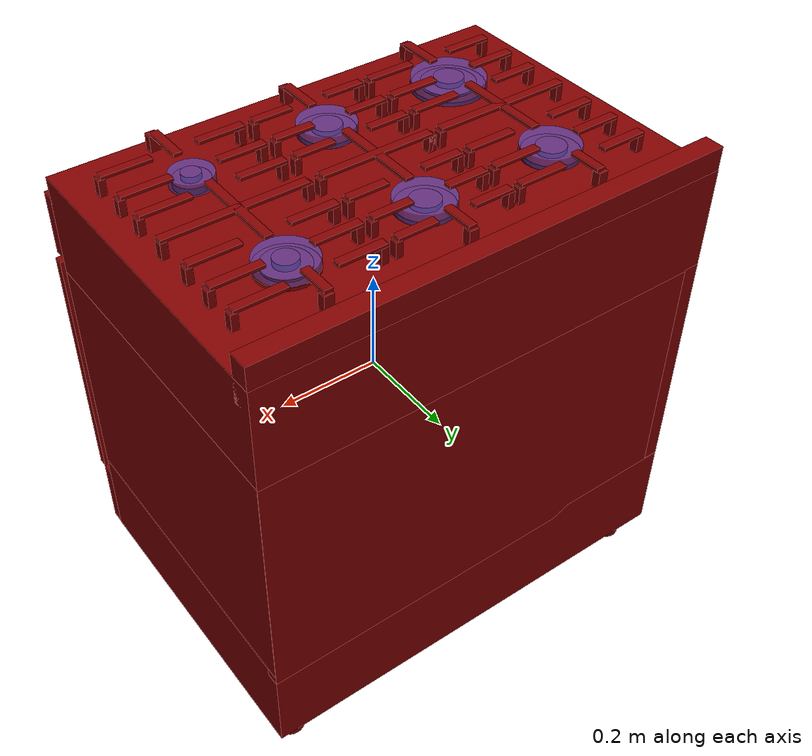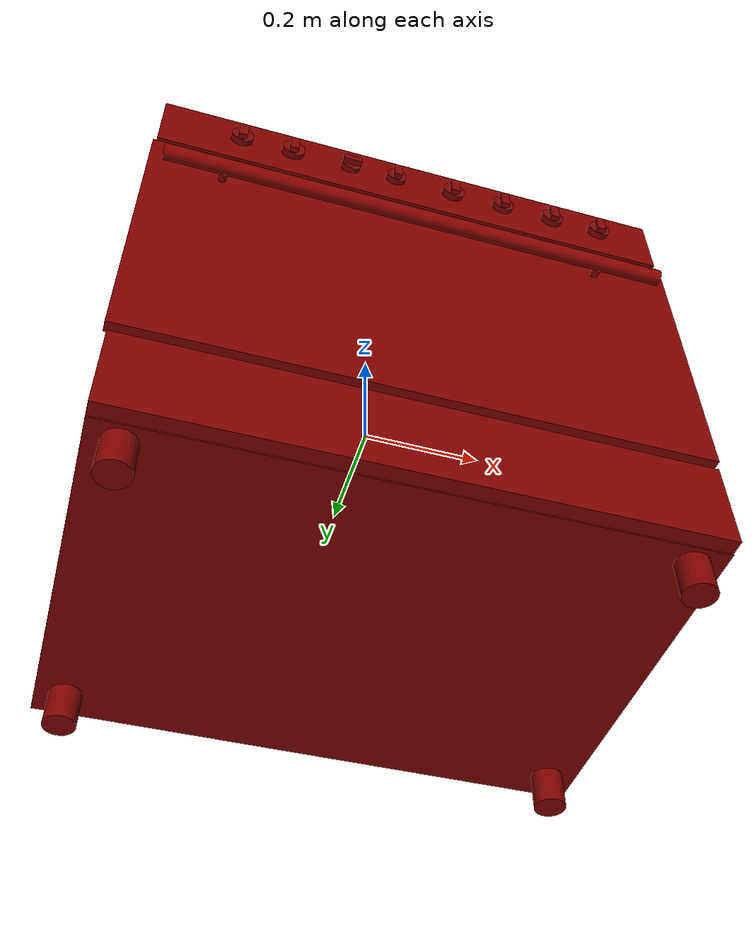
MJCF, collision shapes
<?xml version='1.0' encoding='UTF-8'?>
<mujoco model="model">
  <compiler angle="radian"/>
  <asset>
    <mesh file="visuals/knob_front_center.obj" name="knob_front_center_vis"/>
    <mesh file="visuals/knob_front_left.obj" name="knob_front_left_vis"/>
    <mesh file="visuals/knob_front_right.obj" name="knob_front_right_vis"/>
    <mesh file="visuals/knob_rear_center.obj" name="knob_rear_center_vis"/>
    <mesh file="visuals/knob_rear_left.obj" name="knob_rear_left_vis"/>
    <mesh file="visuals/knob_rear_right.obj" name="knob_rear_right_vis"/>
    <mesh file="visuals/Body001.obj" name="Body001_vis"/>
    <mesh file="visuals/Door001.obj" name="Door001_vis"/>
    <mesh file="visuals/Door001_Clear.obj" name="Door001_Clear_vis"/>
    <mesh file="visuals/Knob001.obj" name="Knob001_vis"/>
    <mesh file="visuals/Knob002.obj" name="Knob002_vis"/>
    <mesh file="visuals/Shelf001.obj" name="Shelf001_vis"/>
    <texture file="visuals/T_BC001.png" name="Body001_material" type="2d"/>
    <material name="Body001_material" rgba="1 1 1 1.0" texture="Body001_material" shininess="0.1" specular="3"/>
    <texture file="visuals/T_BC001.png" name="knob_front_center_material" type="2d"/>
    <material name="knob_front_center_material" rgba="1 1 1 1.0" texture="knob_front_center_material" shininess="0.1" specular="1"/>
    <texture file="visuals/T_BC001.png" name="knob_front_left_material" type="2d"/>
    <material name="knob_front_left_material" rgba="1 1 1 1.0" texture="knob_front_left_material" shininess="0.1" specular="1"/>
    <texture file="visuals/T_BC001.png" name="knob_front_right_material" type="2d"/>
    <material name="knob_front_right_material" rgba="1 1 1 1.0" texture="knob_front_right_material" shininess="0.1" specular="1"/>
    <texture file="visuals/T_BC001.png" name="knob_rear_center_material" type="2d"/>
    <material name="knob_rear_center_material" rgba="1 1 1 1.0" texture="knob_rear_center_material" shininess="0.1" specular="1"/>
    <texture file="visuals/T_BC001.png" name="knob_rear_left_material" type="2d"/>
    <material name="knob_rear_left_material" rgba="1 1 1 1.0" texture="knob_rear_left_material" shininess="0.1" specular="1"/>
    <texture file="visuals/T_BC001.png" name="knob_rear_right_material" type="2d"/>
    <material name="knob_rear_right_material" rgba="1 1 1 1.0" texture="knob_rear_right_material" shininess="0.1" specular="1"/>
    <texture file="visuals/T_BC001.png" name="Door001_material" type="2d"/>
    <material name="Door001_material" rgba="1 1 1 1.0" texture="Door001_material" shininess="0.1" specular="1"/>
    <texture file="visuals/T_BC001.png" name="Door001_Clear_material" type="2d"/>
    <material name="Door001_Clear_material" rgba="1 1 1 0.5" texture="Door001_Clear_material" shininess="0.1" specular="1"/>
    <texture file="visuals/T_BC001.png" name="Knob001_material" type="2d"/>
    <material name="Knob001_material" rgba="1 1 1 1.0" texture="Knob001_material" shininess="0.1" specular="1"/>
    <texture file="visuals/T_BC001.png" name="Knob002_material" type="2d"/>
    <material name="Knob002_material" rgba="1 1 1 1.0" texture="Knob002_material" shininess="0.1" specular="1"/>
    <texture file="visuals/T_BC001.png" name="Shelf001_material" type="2d"/>
    <material name="Shelf001_material" rgba="1 1 1 1.0" texture="Shelf001_material" shininess="0.1" specular="1"/>
  </asset>
  <default>
    <default class="visual">
      <geom conaffinity="0" contype="0" group="1" type="mesh"/>
    </default>
    <default class="collision">
      <geom group="0" rgba="0.5 0 0 0.5"/>
    </default>
    <default class="spawn">
      <geom group="0" rgba="1 1 1 0.5" contype="0" conaffinity="0"/>
      <site group="0" rgba="1 1 1 0.5"/>
    </default>
    <default class="region">
      <geom group="1" conaffinity="0" contype="0" rgba="0 1 0 0"/>
    </default>
  </default>
  <worldbody>
    <body>
      <body name="object">
        <site type="cylinder" rgba="0.3 0.4 1 0.5" size="0.052774783223867416 0.010760868899524212" pos="0.26255980134010315 0.1489594280719757 0.44456061720848083" name="burner_on_rear_right"/>
        <site type="cylinder" rgba="0.3 0.4 1 0.5" size="0.05270331725478172 0.010760868899524212" pos="-0.2542854845523834 0.14379093050956726 0.4441044330596924" name="burner_on_rear_left"/>
        <site type="cylinder" rgba="0.3 0.4 1 0.5" size="0.03870527446269989 0.010760869830846786" pos="0.26398470997810364 -0.12507441639900208 0.44441649317741394" name="burner_on_front_right"/>
        <site type="cylinder" rgba="0.3 0.4 1 0.5" size="0.06828669458627701 0.010760868899524212" pos="-0.2542854845523834 -0.1250743865966797 0.4442591667175293" name="burner_on_front_left"/>
        <site type="cylinder" rgba="0.3 0.4 1 0.5" size="0.052774783223867416 0.010760868899524212" pos="0.004878326319158077 0.14379093050956726 0.44426441192626953" name="burner_on_rear_center"/>
        <site type="cylinder" rgba="0.3 0.4 1 0.5" size="0.052774783223867416 0.010760868899524212" pos="0.004878326319158077 -0.12565484642982483 0.4446250796318054" name="burner_on_front_center"/>
        <geom mesh="Body001_vis" type="mesh" solimp="0.998 0.998 0.001" solref="0.001 1" density="100" friction="0.95 0.3 0.1" class="visual" material="Body001_material"/>
        <geom class="collision" type="box" pos="0.00020488735754042864 0.028140442445874214 -0.32311633229255676" size="0.4453953504562378 0.31004318594932556 0.09313406050205231" quat="1.0 0.0 0.0 0.0"/>
        <geom class="collision" type="box" pos="0.00020488735754042864 0.028639696538448334 0.33483633399009705" size="0.4453953504562378 0.3095439076423645 0.09698358178138733" quat="1.0 0.0 0.0 0.0"/>
        <geom class="collision" type="box" pos="-0.4304044544696808 0.029137693345546722 0.006240129470825195" size="0.014781756326556206 0.30916985869407654 0.23470935225486755" quat="1.0 0.0 0.0 0.0"/>
        <geom class="collision" type="box" pos="0.4310310482978821 0.028086692094802856 0.006240129470825195" size="0.014569397084414959 0.30916979908943176 0.23470935225486755" quat="1.0 0.0 0.0 0.0"/>
        <geom class="collision" type="box" pos="0.00020488735754042864 0.32567211985588074 -0.0013430044054985046" size="0.4453953504562378 0.01251149270683527 0.2447463721036911" quat="1.0 0.0 0.0 0.0"/>
        <geom class="collision" type="box" pos="0.00020488735754042864 0.31876981258392334 0.4303571879863739" size="0.4453953504562378 0.018547752872109413 0.04469680413603783" quat="1.0 0.0 0.0 0.0"/>
        <geom class="collision" type="box" pos="-0.40324121713638306 -0.014663396403193474 0.015698377043008804" size="0.014781756326556206 0.23607884347438812 0.013486760668456554" quat="1.0 0.0 0.0 0.0"/>
        <geom class="collision" type="box" pos="0.40592658519744873 -0.014663396403193474 0.015698377043008804" size="0.014781756326556206 0.23607884347438812 0.013486760668456554" quat="1.0 0.0 0.0 0.0"/>
        <geom class="collision" type="box" pos="-0.2540077865123749 0.016108114272356033 0.46447232365608215" size="0.008020833134651184 0.08827412873506546 0.003019273281097412" quat="1.0 0.0 0.0 0.0"/>
        <geom class="collision" type="box" pos="0.0048889219760894775 0.016108114272356033 0.46447232365608215" size="0.008020833134651184 0.08827412873506546 0.003019273281097412" quat="1.0 0.0 0.0 0.0"/>
        <geom class="collision" type="box" pos="0.26290202140808105 0.016108114272356033 0.46447232365608215" size="0.008020833134651184 0.08827412873506546 0.003019273281097412" quat="1.0 0.0 0.0 0.0"/>
        <geom class="collision" type="box" pos="-0.25400781631469727 0.22924154996871948 0.46447232365608215" size="0.008020833134651184 0.03060511127114296 0.003019273281097412" quat="1.0 0.0 0.0 0.0"/>
        <geom class="collision" type="box" pos="0.0048889219760894775 0.22924154996871948 0.46447232365608215" size="0.008020833134651184 0.03060511127114296 0.003019273281097412" quat="1.0 0.0 0.0 0.0"/>
        <geom class="collision" type="box" pos="0.26290202140808105 0.22924154996871948 0.46447232365608215" size="0.008020833134651184 0.03060511127114296 0.003019273281097412" quat="1.0 0.0 0.0 0.0"/>
        <geom class="collision" type="box" pos="-0.25400781631469727 -0.2080954611301422 0.46447232365608215" size="0.008020833134651184 0.04030852019786835 0.003019273281097412" quat="1.0 0.0 0.0 0.0"/>
        <geom class="collision" type="box" pos="0.0048889219760894775 -0.2080954611301422 0.46447232365608215" size="0.008020833134651184 0.04030852019786835 0.003019273281097412" quat="1.0 0.0 0.0 0.0"/>
        <geom class="collision" type="box" pos="0.26290202140808105 -0.2080954611301422 0.46447232365608215" size="0.008020833134651184 0.04030852019786835 0.003019273281097412" quat="1.0 0.0 0.0 0.0"/>
        <geom class="collision" type="box" pos="0.0048889219760894775 0.016108114272356033 0.46447232365608215" size="0.008020833134651184 0.10770655423402786 0.003019273281097412" quat="0.7071068286895752 0.0 -0.0 -0.7071067690849304"/>
        <geom class="collision" type="box" pos="-0.25487247109413147 0.016108114272356033 0.46447232365608215" size="0.008020833134651184 0.13165384531021118 0.003019273281097412" quat="0.7071068286895752 0.0 -0.0 -0.7071067690849304"/>
        <geom class="collision" type="box" pos="0.26784148812294006 0.016108114272356033 0.46447232365608215" size="0.008020833134651184 0.13165384531021118 0.003019273281097412" quat="0.7071068286895752 0.0 -0.0 -0.7071067690849304"/>
        <geom class="collision" type="box" pos="-0.3809586465358734 0.016108116135001183 0.4467836916446686" size="0.008020833134651184 0.006342153996229172 0.0148042943328619" quat="0.7071068286895752 0.0 -0.0 -0.7071067690849304"/>
        <geom class="collision" type="box" pos="-0.12493142485618591 0.016108116135001183 0.4467836916446686" size="0.008020833134651184 0.006342153996229172 0.0148042943328619" quat="0.7071068286895752 0.0 -0.0 -0.7071067690849304"/>
        <geom class="collision" type="box" pos="-0.10400436073541641 0.016108116135001183 0.4467836916446686" size="0.008020833134651184 0.006342153996229172 0.0148042943328619" quat="0.7071068286895752 0.0 -0.0 -0.7071067690849304"/>
        <geom class="collision" type="box" pos="0.11311667412519455 0.016108116135001183 0.4467836916446686" size="0.008020833134651184 0.006342153996229172 0.0148042943328619" quat="0.7071068286895752 0.0 -0.0 -0.7071067690849304"/>
        <geom class="collision" type="box" pos="0.13638877868652344 0.016108116135001183 0.4467836916446686" size="0.008020833134651184 0.006342153996229172 0.0148042943328619" quat="0.7071068286895752 0.0 -0.0 -0.7071067690849304"/>
        <geom class="collision" type="box" pos="0.3935852646827698 0.016108116135001183 0.4467836916446686" size="0.008020833134651184 0.006342153996229172 0.0148042943328619" quat="0.7071068286895752 0.0 -0.0 -0.7071067690849304"/>
        <geom class="collision" type="box" pos="0.34893062710762024 -0.18455511331558228 0.46447232365608215" size="0.008020833134651184 0.045956991612911224 0.003019273281097412" quat="0.7071068286895752 0.0 -0.0 -0.7071067690849304"/>
        <geom class="collision" type="box" pos="0.3935852646827698 -0.18455511331558228 0.4467836916446686" size="0.008020833134651184 0.006342153996229172 0.0148042943328619" quat="0.7071068286895752 0.0 -0.0 -0.7071067690849304"/>
        <geom class="collision" type="box" pos="0.1388109177350998 -0.18455511331558228 0.4467836916446686" size="0.008020833134651184 0.006342153996229172 0.0148042943328619" quat="0.7071068286895752 0.0 -0.0 -0.7071067690849304"/>
        <geom class="collision" type="box" pos="0.17639386653900146 -0.18455511331558228 0.46447232365608215" size="0.008020833134651184 0.0436764694750309 0.003019273281097412" quat="0.7071068286895752 0.0 -0.0 -0.7071067690849304"/>
        <geom class="collision" type="box" pos="0.34893062710762024 -0.11675010621547699 0.46447232365608215" size="0.008020833134651184 0.045956991612911224 0.003019273281097412" quat="0.7071068286895752 0.0 -0.0 -0.7071067690849304"/>
        <geom class="collision" type="box" pos="0.3935852646827698 -0.11675010621547699 0.4467836916446686" size="0.008020833134651184 0.006342153996229172 0.0148042943328619" quat="0.7071068286895752 0.0 -0.0 -0.7071067690849304"/>
        <geom class="collision" type="box" pos="0.1388109177350998 -0.11675010621547699 0.4467836916446686" size="0.008020833134651184 0.006342153996229172 0.0148042943328619" quat="0.7071068286895752 0.0 -0.0 -0.7071067690849304"/>
        <geom class="collision" type="box" pos="0.17639386653900146 -0.11675010621547699 0.46447232365608215" size="0.008020833134651184 0.0436764694750309 0.003019273281097412" quat="0.7071068286895752 0.0 -0.0 -0.7071067690849304"/>
        <geom class="collision" type="box" pos="0.34893062710762024 -0.055301059037446976 0.46447232365608215" size="0.008020833134651184 0.045956991612911224 0.003019273281097412" quat="0.7071068286895752 0.0 -0.0 -0.7071067690849304"/>
        <geom class="collision" type="box" pos="0.3935852646827698 -0.055301059037446976 0.4467836916446686" size="0.008020833134651184 0.006342153996229172 0.0148042943328619" quat="0.7071068286895752 0.0 -0.0 -0.7071067690849304"/>
        <geom class="collision" type="box" pos="0.1388109177350998 -0.055301059037446976 0.4467836916446686" size="0.008020833134651184 0.006342153996229172 0.0148042943328619" quat="0.7071068286895752 0.0 -0.0 -0.7071067690849304"/>
        <geom class="collision" type="box" pos="0.17639386653900146 -0.055301059037446976 0.46447232365608215" size="0.008020833134651184 0.0436764694750309 0.003019273281097412" quat="0.7071068286895752 0.0 -0.0 -0.7071067690849304"/>
        <geom class="collision" type="box" pos="0.34893062710762024 0.09073549509048462 0.46447232365608215" size="0.008020833134651184 0.045956991612911224 0.003019273281097412" quat="0.7071068286895752 0.0 -0.0 -0.7071067690849304"/>
        <geom class="collision" type="box" pos="0.3935852646827698 0.09073549509048462 0.4467836916446686" size="0.008020833134651184 0.006342153996229172 0.0148042943328619" quat="0.7071068286895752 0.0 -0.0 -0.7071067690849304"/>
        <geom class="collision" type="box" pos="0.1388109177350998 0.09073549509048462 0.4467836916446686" size="0.008020833134651184 0.006342153996229172 0.0148042943328619" quat="0.7071068286895752 0.0 -0.0 -0.7071067690849304"/>
        <geom class="collision" type="box" pos="0.17639386653900146 0.09073549509048462 0.46447232365608215" size="0.008020833134651184 0.0436764694750309 0.003019273281097412" quat="0.7071068286895752 0.0 -0.0 -0.7071067690849304"/>
        <geom class="collision" type="box" pos="0.34893062710762024 0.15319275856018066 0.46447232365608215" size="0.008020833134651184 0.045956991612911224 0.003019273281097412" quat="0.7071068286895752 0.0 -0.0 -0.7071067690849304"/>
        <geom class="collision" type="box" pos="0.3935852646827698 0.15319275856018066 0.4467836916446686" size="0.008020833134651184 0.006342153996229172 0.0148042943328619" quat="0.7071068286895752 0.0 -0.0 -0.7071067690849304"/>
        <geom class="collision" type="box" pos="0.1388109177350998 0.15319275856018066 0.4467836916446686" size="0.008020833134651184 0.006342153996229172 0.0148042943328619" quat="0.7071068286895752 0.0 -0.0 -0.7071067690849304"/>
        <geom class="collision" type="box" pos="0.17639386653900146 0.15319275856018066 0.46447232365608215" size="0.008020833134651184 0.0436764694750309 0.003019273281097412" quat="0.7071068286895752 0.0 -0.0 -0.7071067690849304"/>
        <geom class="collision" type="box" pos="0.34893062710762024 0.21533507108688354 0.46447232365608215" size="0.008020833134651184 0.045956991612911224 0.003019273281097412" quat="0.7071068286895752 0.0 -0.0 -0.7071067690849304"/>
        <geom class="collision" type="box" pos="0.3935852646827698 0.21533507108688354 0.4467836916446686" size="0.008020833134651184 0.006342153996229172 0.0148042943328619" quat="0.7071068286895752 0.0 -0.0 -0.7071067690849304"/>
        <geom class="collision" type="box" pos="0.1388109177350998 0.21533507108688354 0.4467836916446686" size="0.008020833134651184 0.006342153996229172 0.0148042943328619" quat="0.7071068286895752 0.0 -0.0 -0.7071067690849304"/>
        <geom class="collision" type="box" pos="0.17639386653900146 0.21533507108688354 0.46447232365608215" size="0.008020833134651184 0.0436764694750309 0.003019273281097412" quat="0.7071068286895752 0.0 -0.0 -0.7071067690849304"/>
        <geom class="collision" type="box" pos="-0.1687750518321991 -0.18455511331558228 0.46447232365608215" size="0.008020833134651184 0.045956991612911224 0.003019273281097412" quat="0.7071068286895752 0.0 -0.0 -0.7071067690849304"/>
        <geom class="collision" type="box" pos="-0.12412041425704956 -0.18455511331558228 0.4467836916446686" size="0.008020833134651184 0.006342153996229172 0.0148042943328619" quat="0.7071068286895752 0.0 -0.0 -0.7071067690849304"/>
        <geom class="collision" type="box" pos="-0.37889474630355835 -0.18455511331558228 0.4467836916446686" size="0.008020833134651184 0.006342153996229172 0.0148042943328619" quat="0.7071068286895752 0.0 -0.0 -0.7071067690849304"/>
        <geom class="collision" type="box" pos="-0.34131181240081787 -0.18455511331558228 0.46447232365608215" size="0.008020833134651184 0.0436764694750309 0.003019273281097412" quat="0.7071068286895752 0.0 -0.0 -0.7071067690849304"/>
        <geom class="collision" type="box" pos="-0.1687750518321991 -0.11675010621547699 0.46447232365608215" size="0.008020833134651184 0.045956991612911224 0.003019273281097412" quat="0.7071068286895752 0.0 -0.0 -0.7071067690849304"/>
        <geom class="collision" type="box" pos="-0.12412041425704956 -0.11675010621547699 0.4467836916446686" size="0.008020833134651184 0.006342153996229172 0.0148042943328619" quat="0.7071068286895752 0.0 -0.0 -0.7071067690849304"/>
        <geom class="collision" type="box" pos="-0.37889474630355835 -0.11675010621547699 0.4467836916446686" size="0.008020833134651184 0.006342153996229172 0.0148042943328619" quat="0.7071068286895752 0.0 -0.0 -0.7071067690849304"/>
        <geom class="collision" type="box" pos="-0.34131181240081787 -0.11675010621547699 0.46447232365608215" size="0.008020833134651184 0.0436764694750309 0.003019273281097412" quat="0.7071068286895752 0.0 -0.0 -0.7071067690849304"/>
        <geom class="collision" type="box" pos="-0.1687750518321991 -0.055301059037446976 0.46447232365608215" size="0.008020833134651184 0.045956991612911224 0.003019273281097412" quat="0.7071068286895752 0.0 -0.0 -0.7071067690849304"/>
        <geom class="collision" type="box" pos="-0.12412041425704956 -0.055301059037446976 0.4467836916446686" size="0.008020833134651184 0.006342153996229172 0.0148042943328619" quat="0.7071068286895752 0.0 -0.0 -0.7071067690849304"/>
        <geom class="collision" type="box" pos="-0.37889474630355835 -0.055301059037446976 0.4467836916446686" size="0.008020833134651184 0.006342153996229172 0.0148042943328619" quat="0.7071068286895752 0.0 -0.0 -0.7071067690849304"/>
        <geom class="collision" type="box" pos="-0.34131181240081787 -0.055301059037446976 0.46447232365608215" size="0.008020833134651184 0.0436764694750309 0.003019273281097412" quat="0.7071068286895752 0.0 -0.0 -0.7071067690849304"/>
        <geom class="collision" type="box" pos="-0.1687750518321991 0.09073549509048462 0.46447232365608215" size="0.008020833134651184 0.045956991612911224 0.003019273281097412" quat="0.7071068286895752 0.0 -0.0 -0.7071067690849304"/>
        <geom class="collision" type="box" pos="-0.12412041425704956 0.09073549509048462 0.4467836916446686" size="0.008020833134651184 0.006342153996229172 0.0148042943328619" quat="0.7071068286895752 0.0 -0.0 -0.7071067690849304"/>
        <geom class="collision" type="box" pos="-0.37889474630355835 0.09073549509048462 0.4467836916446686" size="0.008020833134651184 0.006342153996229172 0.0148042943328619" quat="0.7071068286895752 0.0 -0.0 -0.7071067690849304"/>
        <geom class="collision" type="box" pos="-0.34131181240081787 0.09073549509048462 0.46447232365608215" size="0.008020833134651184 0.0436764694750309 0.003019273281097412" quat="0.7071068286895752 0.0 -0.0 -0.7071067690849304"/>
        <geom class="collision" type="box" pos="-0.1687750518321991 0.15319275856018066 0.46447232365608215" size="0.008020833134651184 0.045956991612911224 0.003019273281097412" quat="0.7071068286895752 0.0 -0.0 -0.7071067690849304"/>
        <geom class="collision" type="box" pos="-0.12412041425704956 0.15319275856018066 0.4467836916446686" size="0.008020833134651184 0.006342153996229172 0.0148042943328619" quat="0.7071068286895752 0.0 -0.0 -0.7071067690849304"/>
        <geom class="collision" type="box" pos="-0.37889474630355835 0.15319275856018066 0.4467836916446686" size="0.008020833134651184 0.006342153996229172 0.0148042943328619" quat="0.7071068286895752 0.0 -0.0 -0.7071067690849304"/>
        <geom class="collision" type="box" pos="-0.34131181240081787 0.15319275856018066 0.46447232365608215" size="0.008020833134651184 0.0436764694750309 0.003019273281097412" quat="0.7071068286895752 0.0 -0.0 -0.7071067690849304"/>
        <geom class="collision" type="box" pos="-0.1687750518321991 0.21533507108688354 0.46447232365608215" size="0.008020833134651184 0.045956991612911224 0.003019273281097412" quat="0.7071068286895752 0.0 -0.0 -0.7071067690849304"/>
        <geom class="collision" type="box" pos="-0.12412041425704956 0.21533507108688354 0.4467836916446686" size="0.008020833134651184 0.006342153996229172 0.0148042943328619" quat="0.7071068286895752 0.0 -0.0 -0.7071067690849304"/>
        <geom class="collision" type="box" pos="-0.37889474630355835 0.21533507108688354 0.4467836916446686" size="0.008020833134651184 0.006342153996229172 0.0148042943328619" quat="0.7071068286895752 0.0 -0.0 -0.7071067690849304"/>
        <geom class="collision" type="box" pos="-0.34131181240081787 0.21533507108688354 0.46447232365608215" size="0.008020833134651184 0.0436764694750309 0.003019273281097412" quat="0.7071068286895752 0.0 -0.0 -0.7071067690849304"/>
        <geom class="collision" type="box" pos="0.0768672376871109 -0.18455511331558228 0.46447232365608215" size="0.008020833134651184 0.03735075145959854 0.003019273281097412" quat="0.7071068286895752 0.0 -0.0 -0.7071067690849304"/>
        <geom class="collision" type="box" pos="0.1127413958311081 -0.18455511331558228 0.4467836916446686" size="0.008020833134651184 0.006342153996229172 0.0148042943328619" quat="0.7071068286895752 0.0 -0.0 -0.7071067690849304"/>
        <geom class="collision" type="box" pos="0.0768672376871109 -0.11675010621547699 0.46447232365608215" size="0.008020833134651184 0.03735075145959854 0.003019273281097412" quat="0.7071068286895752 0.0 -0.0 -0.7071067690849304"/>
        <geom class="collision" type="box" pos="0.1127413958311081 -0.11675010621547699 0.4467836916446686" size="0.008020833134651184 0.006342153996229172 0.0148042943328619" quat="0.7071068286895752 0.0 -0.0 -0.7071067690849304"/>
        <geom class="collision" type="box" pos="0.0768672376871109 -0.05530105531215668 0.46447232365608215" size="0.008020833134651184 0.03735075145959854 0.003019273281097412" quat="0.7071068286895752 0.0 -0.0 -0.7071067690849304"/>
        <geom class="collision" type="box" pos="0.1127413958311081 -0.055301059037446976 0.4467836916446686" size="0.008020833134651184 0.006342153996229172 0.0148042943328619" quat="0.7071068286895752 0.0 -0.0 -0.7071067690849304"/>
        <geom class="collision" type="box" pos="0.0768672376871109 0.09073549509048462 0.46447232365608215" size="0.008020833134651184 0.03735075145959854 0.003019273281097412" quat="0.7071068286895752 0.0 -0.0 -0.7071067690849304"/>
        <geom class="collision" type="box" pos="0.1127413958311081 0.09073549509048462 0.4467836916446686" size="0.008020833134651184 0.006342153996229172 0.0148042943328619" quat="0.7071068286895752 0.0 -0.0 -0.7071067690849304"/>
        <geom class="collision" type="box" pos="0.0768672376871109 0.15319275856018066 0.46447232365608215" size="0.008020833134651184 0.03735075145959854 0.003019273281097412" quat="0.7071068286895752 0.0 -0.0 -0.7071067690849304"/>
        <geom class="collision" type="box" pos="0.1127413958311081 0.15319275856018066 0.4467836916446686" size="0.008020833134651184 0.006342153996229172 0.0148042943328619" quat="0.7071068286895752 0.0 -0.0 -0.7071067690849304"/>
        <geom class="collision" type="box" pos="0.0768672376871109 0.21533507108688354 0.46447232365608215" size="0.008020833134651184 0.03735075145959854 0.003019273281097412" quat="0.7071068286895752 0.0 -0.0 -0.7071067690849304"/>
        <geom class="collision" type="box" pos="0.1127413958311081 0.21533507108688354 0.4467836916446686" size="0.008020833134651184 0.006342153996229172 0.0148042943328619" quat="0.7071068286895752 0.0 -0.0 -0.7071067690849304"/>
        <geom class="collision" type="box" pos="-0.06773796677589417 -0.18455511331558228 0.46447232365608215" size="0.008020833134651184 0.03735075145959854 0.003019273281097412" quat="0.7071068286895752 0.0 -0.0 -0.7071067690849304"/>
        <geom class="collision" type="box" pos="-0.06773796677589417 -0.11675010621547699 0.46447232365608215" size="0.008020833134651184 0.03735075145959854 0.003019273281097412" quat="0.7071068286895752 0.0 -0.0 -0.7071067690849304"/>
        <geom class="collision" type="box" pos="-0.06773796677589417 -0.05530105531215668 0.46447232365608215" size="0.008020833134651184 0.03735075145959854 0.003019273281097412" quat="0.7071068286895752 0.0 -0.0 -0.7071067690849304"/>
        <geom class="collision" type="box" pos="-0.06773796677589417 0.09073549509048462 0.46447232365608215" size="0.008020833134651184 0.03735075145959854 0.003019273281097412" quat="0.7071068286895752 0.0 -0.0 -0.7071067690849304"/>
        <geom class="collision" type="box" pos="-0.06773796677589417 0.15319275856018066 0.46447232365608215" size="0.008020833134651184 0.03735075145959854 0.003019273281097412" quat="0.7071068286895752 0.0 -0.0 -0.7071067690849304"/>
        <geom class="collision" type="box" pos="-0.06773796677589417 0.21533507108688354 0.46447232365608215" size="0.008020833134651184 0.03735075145959854 0.003019273281097412" quat="0.7071068286895752 0.0 -0.0 -0.7071067690849304"/>
        <geom class="collision" type="box" pos="-0.10229562968015671 0.016108116135001183 0.4467836916446686" size="0.008020833134651184 0.006342153996229172 0.0148042943328619" quat="0.7071068286895752 0.0 -0.0 -0.7071067690849304"/>
        <geom class="collision" type="box" pos="-0.10267090797424316 -0.18455511331558228 0.4467836916446686" size="0.008020833134651184 0.006342153996229172 0.0148042943328619" quat="0.7071068286895752 0.0 -0.0 -0.7071067690849304"/>
        <geom class="collision" type="box" pos="-0.10267090797424316 -0.11675010621547699 0.4467836916446686" size="0.008020833134651184 0.006342153996229172 0.0148042943328619" quat="0.7071068286895752 0.0 -0.0 -0.7071067690849304"/>
        <geom class="collision" type="box" pos="-0.10267090797424316 -0.055301059037446976 0.4467836916446686" size="0.008020833134651184 0.006342153996229172 0.0148042943328619" quat="0.7071068286895752 0.0 -0.0 -0.7071067690849304"/>
        <geom class="collision" type="box" pos="-0.10267090797424316 0.09073549509048462 0.4467836916446686" size="0.008020833134651184 0.006342153996229172 0.0148042943328619" quat="0.7071068286895752 0.0 -0.0 -0.7071067690849304"/>
        <geom class="collision" type="box" pos="-0.10267090797424316 0.15319275856018066 0.4467836916446686" size="0.008020833134651184 0.006342153996229172 0.0148042943328619" quat="0.7071068286895752 0.0 -0.0 -0.7071067690849304"/>
        <geom class="collision" type="box" pos="-0.10267090797424316 0.21533507108688354 0.4467836916446686" size="0.008020833134651184 0.006342153996229172 0.0148042943328619" quat="0.7071068286895752 0.0 -0.0 -0.7071067690849304"/>
        <geom class="collision" type="box" pos="-0.2565237283706665 0.25669053196907043 0.4467836916446686" size="0.008020833134651184 0.0088351396843791 0.0148042943328619" quat="0.7071068286895752 0.0 -0.0 -0.7071067690849304"/>
        <geom class="collision" type="box" pos="-0.2565237283706665 -0.25266823172569275 0.4467836916446686" size="0.008020833134651184 0.0088351396843791 0.0148042943328619" quat="0.7071068286895752 0.0 -0.0 -0.7071067690849304"/>
        <geom class="collision" type="box" pos="0.005409449338912964 0.25669053196907043 0.4467836916446686" size="0.008020833134651184 0.0088351396843791 0.0148042943328619" quat="0.7071068286895752 0.0 -0.0 -0.7071067690849304"/>
        <geom class="collision" type="box" pos="0.005409449338912964 -0.25266823172569275 0.4467836916446686" size="0.008020833134651184 0.0088351396843791 0.0148042943328619" quat="0.7071068286895752 0.0 -0.0 -0.7071067690849304"/>
        <geom class="collision" type="box" pos="0.26543349027633667 0.25669053196907043 0.4467836916446686" size="0.008020833134651184 0.0088351396843791 0.0148042943328619" quat="0.7071068286895752 0.0 -0.0 -0.7071067690849304"/>
        <geom class="collision" type="box" pos="0.26543349027633667 -0.25266823172569275 0.4467836916446686" size="0.008020833134651184 0.0088351396843791 0.0148042943328619" quat="0.7071068286895752 0.0 -0.0 -0.7071067690849304"/>
        <geom class="collision" type="cylinder" pos="0.004475499968975782 -0.12605993449687958 0.43533602356910706" size="0.050690971314907074 0.0046903761103749275" quat="1.0 0.0 0.0 0.0"/>
        <geom class="collision" type="cylinder" pos="0.004475499968975782 -0.12605993449687958 0.44558706879615784" size="0.026749199256300926 0.004697184544056654" quat="1.0 0.0 0.0 0.0"/>
        <geom class="collision" type="cylinder" pos="0.2644246220588684 -0.12605993449687958 0.4373880624771118" size="0.03253355994820595 0.006698829587548971" quat="1.0 0.0 0.0 0.0"/>
        <geom class="collision" type="cylinder" pos="0.2644246220588684 -0.12605993449687958 0.4492843449115753" size="0.017111772671341896 0.005864665377885103" quat="1.0 0.0 0.0 0.0"/>
        <geom class="collision" type="cylinder" pos="-0.25497615337371826 -0.12605993449687958 0.4331173896789551" size="0.06697637587785721 0.006197245325893164" quat="1.0 0.0 0.0 0.0"/>
        <geom class="collision" type="cylinder" pos="-0.25497615337371826 -0.12605993449687958 0.4399527907371521" size="0.05044073984026909 0.004110780078917742" quat="1.0 0.0 0.0 0.0"/>
        <geom class="collision" type="cylinder" pos="-0.25497615337371826 -0.12605993449687958 0.4490155279636383" size="0.02739134430885315 0.005384530406445265" quat="1.0 0.0 0.0 0.0"/>
        <geom class="collision" type="cylinder" pos="0.26277685165405273 0.1482143998146057 0.436343789100647" size="0.053550779819488525 0.003170776180922985" quat="1.0 0.0 0.0 0.0"/>
        <geom class="collision" type="cylinder" pos="0.26277685165405273 0.1482143998146057 0.44075971841812134" size="0.04089323431253433 0.0029994207434356213" quat="1.0 0.0 0.0 0.0"/>
        <geom class="collision" type="cylinder" pos="0.26277685165405273 0.1482143998146057 0.44931647181510925" size="0.02119172364473343 0.005735463462769985" quat="1.0 0.0 0.0 0.0"/>
        <geom class="collision" type="cylinder" pos="0.004475499968975782 0.1440144032239914 0.43533602356910706" size="0.050690971314907074 0.0046903761103749275" quat="1.0 0.0 0.0 0.0"/>
        <geom class="collision" type="cylinder" pos="0.004475499968975782 0.1440144032239914 0.44558706879615784" size="0.026749199256300926 0.004697184544056654" quat="1.0 0.0 0.0 0.0"/>
        <geom class="collision" type="cylinder" pos="-0.2555323839187622 0.1440144032239914 0.43533602356910706" size="0.050690971314907074 0.0046903761103749275" quat="1.0 0.0 0.0 0.0"/>
        <geom class="collision" type="cylinder" pos="-0.2555323839187622 0.1440144032239914 0.44558706879615784" size="0.026749199256300926 0.004697184544056654" quat="1.0 0.0 0.0 0.0"/>
        <geom class="collision" type="cylinder" pos="-0.3973701298236847 -0.24933138489723206 -0.44423994421958923" size="0.025929519906640053 0.030012857168912888" quat="1.0 0.0 0.0 0.0"/>
        <geom class="collision" type="cylinder" pos="-0.3973701298236847 0.2881637513637543 -0.44423994421958923" size="0.025929519906640053 0.030012857168912888" quat="1.0 0.0 0.0 0.0"/>
        <geom class="collision" type="cylinder" pos="0.3978939652442932 -0.24933138489723206 -0.44423994421958923" size="0.025929519906640053 0.030012857168912888" quat="1.0 0.0 0.0 0.0"/>
        <geom class="collision" type="cylinder" pos="0.3978939652442932 0.2881637513637543 -0.44423994421958923" size="0.025929519906640053 0.030012857168912888" quat="1.0 0.0 0.0 0.0"/>
        <geom class="collision" type="box" pos="0.00020488735754042864 -0.29376304149627686 -0.34042614698410034" size="0.4453953504562378 0.012395961210131645 0.07349462062120438" quat="1.0 0.0 0.0 0.0"/>
        <geom class="collision" type="box" pos="0.00020488735754042864 -0.29060161113739014 0.32981452345848083" size="0.4453953504562378 0.014023927971720695 0.06135963648557663" quat="1.0 0.0 0.0 0.0"/>
        <body name="knob_front_center">
          <joint axis="0.0 -1.0 0.0" pos="0.0684075802564621 -0.31786757707595825 0.3265279531478882" limited="true" name="knob_front_center_joint" range="0.0 3.141592653589793" type="hinge" damping="0.05" armature="0.001"/>
          <geom mesh="knob_front_center_vis" type="mesh" solimp="0.998 0.998 0.001" solref="0.001 1" density="100" friction="0.95 0.3 0.1" class="visual" material="knob_front_center_material"/>
          <geom class="collision" type="cylinder" pos="0.06830750405788422 -0.3138318359851837 0.3265135884284973" size="0.018944857642054558 0.005755343474447727" quat="0.7071068286895752 0.7071067690849304 -1.5700924318127872e-16 -5.9269340452702814e-24"/>
          <geom class="collision" type="box" pos="0.06844642758369446 -0.32339245080947876 0.3268134891986847" size="0.0076674893498420715 0.005506603978574276 0.017259594053030014" quat="1.0 0.0 0.0 0.0" name="knob_front_center_main"/>
        </body>
        <body name="knob_front_left">
          <joint axis="0.0 -1.0 0.0" pos="-0.30868589878082275 -0.31786757707595825 0.3265279531478882" limited="true" name="knob_front_left_joint" range="0.0 3.141592653589793" type="hinge" damping="0.05" armature="0.001"/>
          <geom mesh="knob_front_left_vis" type="mesh" solimp="0.998 0.998 0.001" solref="0.001 1" density="100" friction="0.95 0.3 0.1" class="visual" material="knob_front_left_material"/>
          <geom class="collision" type="cylinder" pos="-0.3088058829307556 -0.3138318359851837 0.3264361321926117" size="0.019034666940569878 0.005782627500593662" quat="0.7071068286895752 0.7071067690849304 -1.5700924318127872e-16 -5.9269340452702814e-24"/>
          <geom class="collision" type="box" pos="-0.3088969588279724 -0.32339245080947876 0.3268134891986847" size="0.0076674893498420715 0.005506603978574276 0.017259594053030014" quat="1.0 0.0 0.0 0.0" name="knob_front_left_main"/>
        </body>
        <body name="knob_front_right">
          <joint axis="0.0 -1.0 0.0" pos="0.34271010756492615 -0.31786757707595825 0.3265279531478882" limited="true" name="knob_front_right_joint" range="0.0 3.141592653589793" type="hinge" damping="0.05" armature="0.001"/>
          <geom mesh="knob_front_right_vis" type="mesh" solimp="0.998 0.998 0.001" solref="0.001 1" density="100" friction="0.95 0.3 0.1" class="visual" material="knob_front_right_material"/>
          <geom class="collision" type="cylinder" pos="0.34278208017349243 -0.3138318359851837 0.32634207606315613" size="0.018733950331807137 0.005691270809620619" quat="0.7071068286895752 0.7071067690849304 -1.5700924318127872e-16 -5.9269340452702814e-24"/>
          <geom class="collision" type="box" pos="0.34231430292129517 -0.32339245080947876 0.3268134891986847" size="0.0076674893498420715 0.005506603978574276 0.017259594053030014" quat="1.0 0.0 0.0 0.0" name="knob_front_right_main"/>
        </body>
        <body name="knob_rear_center">
          <joint axis="0.0 -1.0 0.0" pos="0.15972557663917542 -0.31786757707595825 0.3265279531478882" limited="true" name="knob_rear_center_joint" range="0.0 3.141592653589793" type="hinge" damping="0.05" armature="0.001"/>
          <geom mesh="knob_rear_center_vis" type="mesh" solimp="0.998 0.998 0.001" solref="0.001 1" density="100" friction="0.95 0.3 0.1" class="visual" material="knob_rear_center_material"/>
          <geom class="collision" type="cylinder" pos="0.1607619971036911 -0.3138318359851837 0.3264754116535187" size="0.01846225932240486 0.005608732812106609" quat="0.7071068286895752 0.7071067690849304 -1.5700924318127872e-16 -5.9269340452702814e-24"/>
          <geom class="collision" type="box" pos="0.16054612398147583 -0.32339245080947876 0.3268134891986847" size="0.0076674893498420715 0.005506603978574276 0.017259594053030014" quat="1.0 0.0 0.0 0.0" name="knob_rear_center_main"/>
        </body>
        <body name="knob_rear_left">
          <joint axis="0.0 -1.0 0.0" pos="-0.2200118750333786 -0.31786757707595825 0.3265279531478882" limited="true" name="knob_rear_left_joint" range="0.0 3.141592653589793" type="hinge" damping="0.05" armature="0.001"/>
          <geom mesh="knob_rear_left_vis" type="mesh" solimp="0.998 0.998 0.001" solref="0.001 1" density="100" friction="0.95 0.3 0.1" class="visual" material="knob_rear_left_material"/>
          <geom class="collision" type="cylinder" pos="-0.21977108716964722 -0.3138318359851837 0.32643818855285645" size="0.019581664353609085 0.00594880199059844" quat="0.7071068286895752 0.7071067690849304 -1.5700924318127872e-16 -5.9269340452702814e-24"/>
          <geom class="collision" type="box" pos="-0.2201593816280365 -0.32339245080947876 0.3268134891986847" size="0.0076674893498420715 0.005506603978574276 0.017259594053030014" quat="1.0 0.0 0.0 0.0" name="knob_rear_left_main"/>
        </body>
        <body name="knob_rear_right">
          <joint axis="0.0 -1.0 0.0" pos="0.2537602484226227 -0.31786757707595825 0.3265279531478882" limited="true" name="knob_rear_right_joint" range="0.0 3.141592653589793" type="hinge" damping="0.05" armature="0.001"/>
          <geom mesh="knob_rear_right_vis" type="mesh" solimp="0.998 0.998 0.001" solref="0.001 1" density="100" friction="0.95 0.3 0.1" class="visual" material="knob_rear_right_material"/>
          <geom class="collision" type="cylinder" pos="0.2541477680206299 -0.3137458860874176 0.32673850655555725" size="0.018716387450695038 0.005685935728251934" quat="0.7071068286895752 0.7071067690849304 -1.5700924318127872e-16 -5.9269340452702814e-24"/>
          <geom class="collision" type="box" pos="0.25435870885849 -0.32339245080947876 0.3268134891986847" size="0.0076674893498420715 0.005506603978574276 0.017259594053030014" quat="1.0 0.0 0.0 0.0" name="knob_rear_right_main"/>
        </body>
        <body name="Door001">
          <joint axis="1.0 0.0 0.0" pos="-0.0006437003612518311 -0.3049733638763428 -0.24929851293563843" limited="true" name="Door001_joint" range="0.0 1.5707963267948966" type="hinge" damping="1" frictionloss="1" armature=".01" stiffness="0.05"/>
          <geom mesh="Door001_vis" type="mesh" solimp="0.998 0.998 0.001" solref="0.001 1" density="100" friction="0.95 0.3 0.1" class="visual" material="Door001_material"/>
          <geom class="collision" type="box" pos="8.396455086767673e-09 -0.29734715819358826 0.0038016922771930695" size="0.4506116509437561 0.0088118314743042 0.25270891189575195" quat="1.0 0.0 0.0 0.0"/>
          <geom class="collision" type="cylinder" pos="-0.32991474866867065 -0.3176621198654175 0.17893517017364502" size="0.006746548693627119 0.009706661105155945" quat="0.7071068286895752 0.7071067690849304 -1.5700924318127872e-16 -5.9269340452702814e-24"/>
          <geom class="collision" type="cylinder" pos="0.31512007117271423 -0.3176621198654175 0.17893517017364502" size="0.006746548693627119 0.009706661105155945" quat="0.7071068286895752 0.7071067690849304 -1.5700924318127872e-16 -5.9269340452702814e-24"/>
          <geom class="collision" type="cylinder" pos="-0.002821892499923706 -0.33255094289779663 0.18105299770832062" size="0.013173732906579971 0.42605987191200256" quat="0.5000000596046448 0.5 -0.4999999701976776 -0.5"/>
          <body name="Door001_Clear">
            <geom mesh="Door001_Clear_vis" type="mesh" solimp="0.998 0.998 0.001" solref="0.001 1" density="100" friction="0.95 0.3 0.1" class="visual" material="Door001_Clear_material"/>
            <geom class="collision" type="box" pos="0.00020488735754042864 -0.3022546172142029 0.0007474953308701515" size="0.3188565969467163 0.002739383140578866 0.12557406723499298" quat="1.0 0.0 0.0 0.0"/>
          </body>
        </body>
        <body name="Knob001">
          <joint axis="0.0 1.0 0.0" pos="-0.11777196079492569 -0.31786757707595825 0.3272983133792877" limited="true" name="Knob001_joint" range="0.0 5.235987755982989" type="hinge" damping="0.05" armature="0.001"/>
          <geom mesh="Knob001_vis" type="mesh" solimp="0.998 0.998 0.001" solref="0.001 1" density="100" friction="0.95 0.3 0.1" class="visual" material="Knob001_material"/>
          <geom class="collision" type="cylinder" pos="-0.11786969006061554 -0.3138318359851837 0.327274888753891" size="0.017090214416384697 0.005191913340240717" quat="0.7071068286895752 0.7071067690849304 -1.5700924318127872e-16 -5.9269340452702814e-24"/>
          <geom class="collision" type="box" pos="-0.1176527813076973 -0.32339245080947876 0.32740312814712524" size="0.006903629284352064 0.005506603978574276 0.015850404277443886" quat="0.7071068286895752 -4.750302906586512e-08 0.7071067094802856 4.7503018407724085e-08"/>
        </body>
        <body name="Knob002">
          <joint axis="0.0 1.0 0.0" pos="-0.03163878247141838 -0.31786757707595825 0.3281542658805847" limited="true" name="Knob002_joint" range="0.0 5.672320068981571" type="hinge" damping="0.05" armature="0.001"/>
          <geom mesh="Knob002_vis" type="mesh" solimp="0.998 0.998 0.001" solref="0.001 1" density="100" friction="0.95 0.3 0.1" class="visual" material="Knob002_material"/>
          <geom class="collision" type="cylinder" pos="-0.036184996366500854 -0.3138318359851837 0.3278987407684326" size="0.017294375225901604 0.005253936164081097" quat="0.7071068286895752 0.7071067690849304 -1.5700924318127872e-16 -5.9269340452702814e-24"/>
          <geom class="collision" type="box" pos="-0.03583196550607681 -0.32339245080947876 0.3283541798591614" size="0.006903629284352064 0.005506603978574276 0.015850404277443886" quat="1.0 0.0 0.0 0.0"/>
        </body>
        <body name="Shelf001">
          <joint axis="0.0 -1.0 0.0" pos="-0.001157909631729126 -0.05307634174823761 0.03961487114429474" limited="true" name="Shelf001_joint" range="0.0 0.38" type="slide" damping="1" frictionloss="1" armature=".01" stiffness="0.05"/>
          <geom mesh="Shelf001_vis" type="mesh" solimp="0.998 0.998 0.001" solref="0.001 1" density="100" friction="0.95 0.3 0.1" class="visual" material="Shelf001_material"/>
          <geom class="collision" type="box" pos="0.00020488735754042864 -0.051253046840429306 0.043968718498945236" size="0.3874490559101105 0.18999652564525604 0.0037022163160145283" quat="1.0 0.0 0.0 0.0"/>
        </body>
        <site name="burner_rear_right_place_site" type="cylinder" rgba="0.3 0.4 1 0" size="0.052774783223867416 0.010760868899524212" pos="0.26255980134010315 0.1489594280719757 0.44456061720848083"/>
        <site name="burner_rear_left_place_site" type="cylinder" rgba="0.3 0.4 1 0" size="0.05270331725478172 0.010760868899524212" pos="-0.2542854845523834 0.14379093050956726 0.4441044330596924"/>
        <site name="burner_front_right_place_site" type="cylinder" rgba="0.3 0.4 1 0" size="0.03870527446269989 0.010760869830846786" pos="0.26398470997810364 -0.12507441639900208 0.44441649317741394"/>
        <site name="burner_front_left_place_site" type="cylinder" rgba="0.3 0.4 1 0" size="0.06828669458627701 0.010760868899524212" pos="-0.2542854845523834 -0.1250743865966797 0.4442591667175293"/>
        <site name="burner_rear_center_place_site" type="cylinder" rgba="0.3 0.4 1 0" size="0.052774783223867416 0.010760868899524212" pos="0.004878326319158077 0.14379093050956726 0.44426441192626953"/>
        <site name="burner_front_center_place_site" type="cylinder" rgba="0.3 0.4 1 0" size="0.052774783223867416 0.010760868899524212" pos="0.004878326319158077 -0.12565484642982483 0.4446250796318054"/>
        <geom class="region" name="reg_main" type="box" pos="7.450580596923828e-09 0.01946103572845459 -0.021570652723312378" size="0.4506116807460785 0.32562005519866943 0.45338985323905945"/>
        <geom class="region" name="reg_int" type="box" pos="0.00040349364280700684 0.010223537683486938 0.004320032894611359" size="0.4135986268520355 0.3023342788219452 0.23173750191926956"/>
      </body>
    </body>
  </worldbody>
  <actuator>
    <motor name="knob_front_center_joint_actuator" joint="knob_front_center_joint" gear="10"/>
    <motor name="knob_front_left_joint_actuator" joint="knob_front_left_joint" gear="10"/>
    <motor name="knob_front_right_joint_actuator" joint="knob_front_right_joint" gear="10"/>
    <motor name="knob_rear_center_joint_actuator" joint="knob_rear_center_joint" gear="10"/>
    <motor name="knob_rear_left_joint_actuator" joint="knob_rear_left_joint" gear="10"/>
    <motor name="knob_rear_right_joint_actuator" joint="knob_rear_right_joint" gear="10"/>
    <motor name="Door001_joint_actuator" joint="Door001_joint" gear="50"/>
    <motor name="Knob001_joint_actuator" joint="Knob001_joint" gear="50"/>
    <motor name="Knob002_joint_actuator" joint="Knob002_joint" gear="50"/>
    <motor name="Shelf001_joint_actuator" joint="Shelf001_joint" gear="50"/>
  </actuator>
</mujoco>
